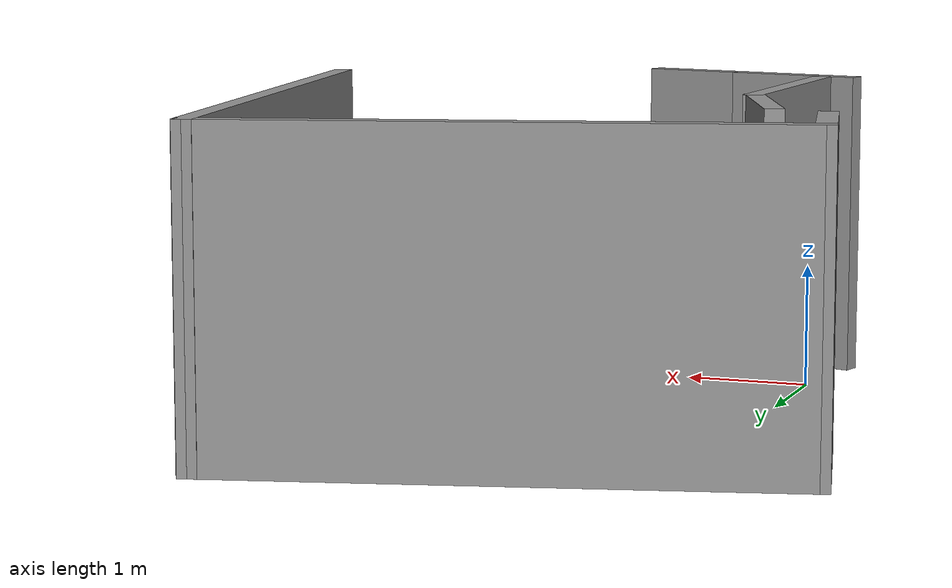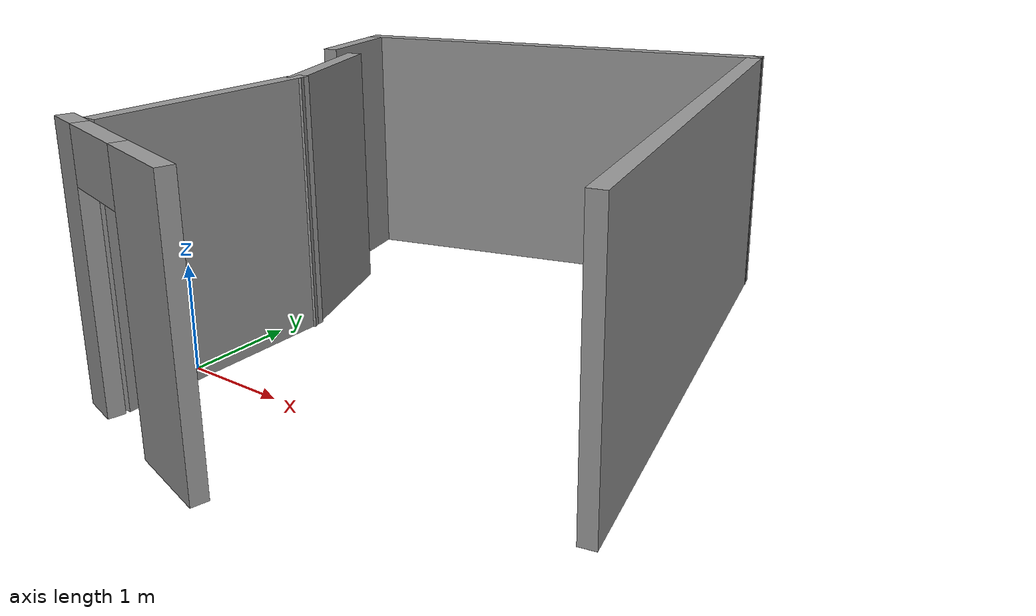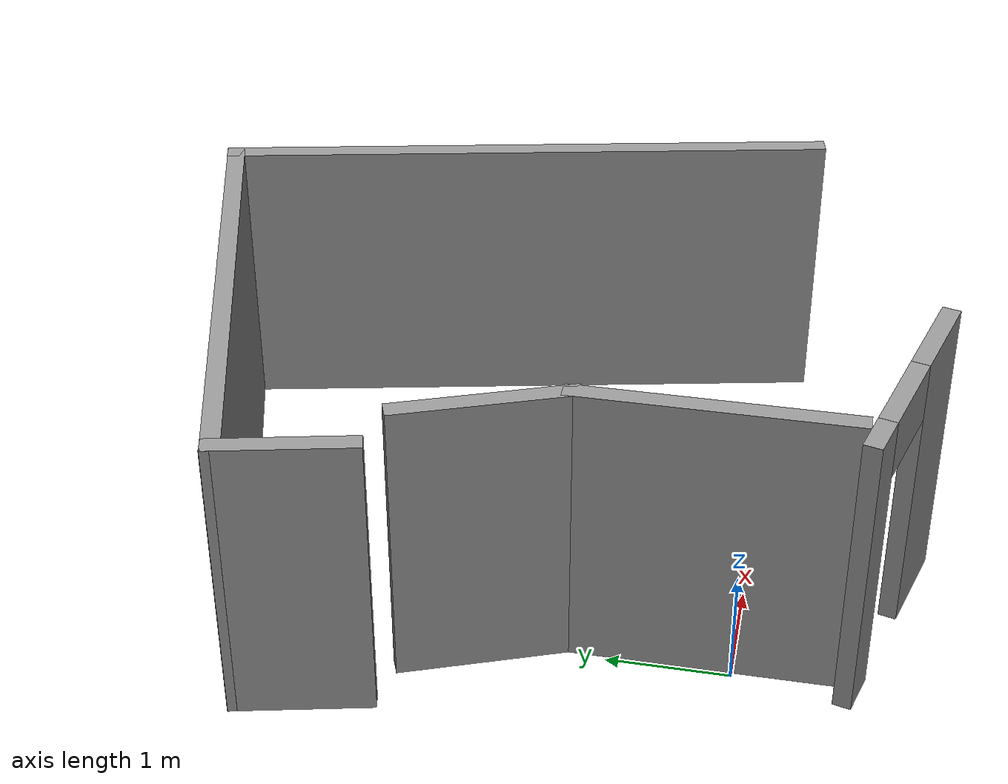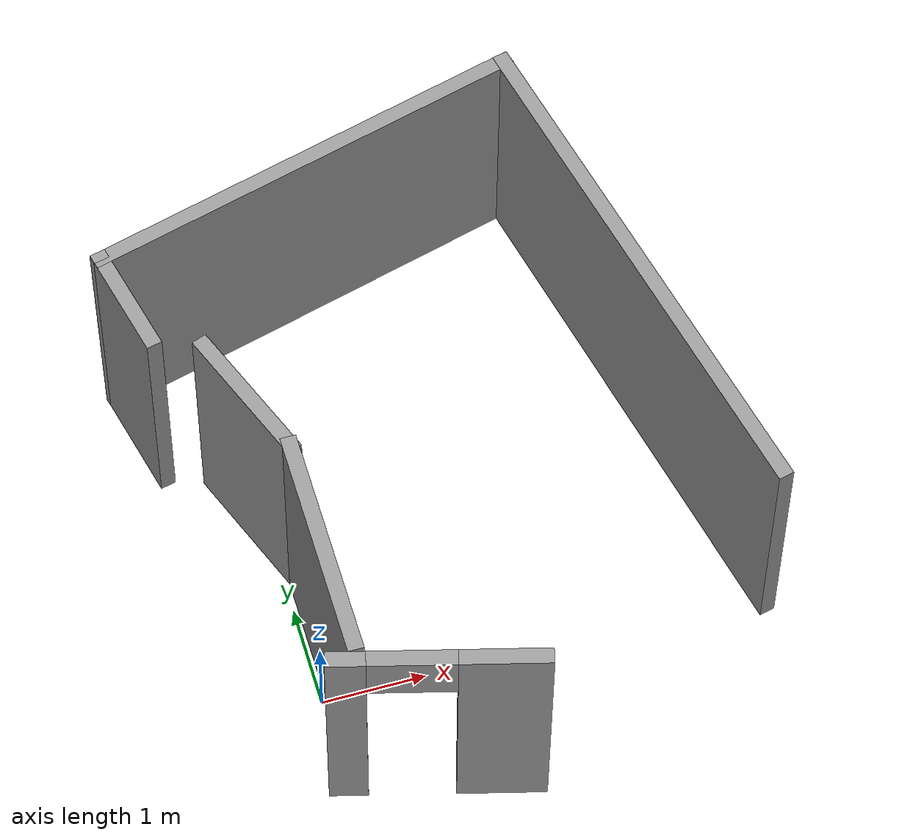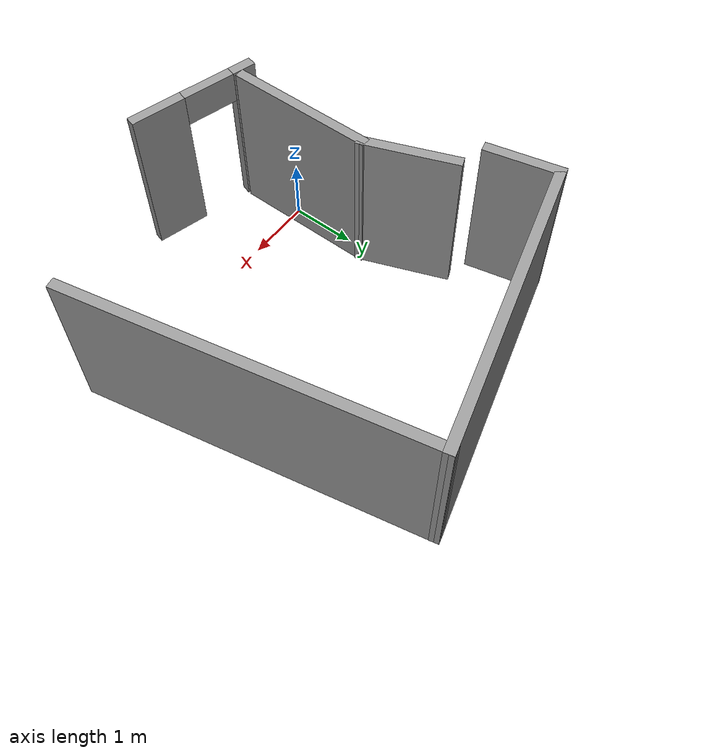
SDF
<?xml version='1.0'?>
<sdf version='1.6'>
  <model name='summer_studio_lab'>
    <pose frame=''>1.61217 1.73553 0 0 -0 0</pose>
    <link name='Wall_10'>
      <collision name='Wall_10_Collision'>
        <geometry>
          <box>
            <size>2.25 0.15 2.5</size>
          </box>
        </geometry>
        <pose frame=''>0 0 1.25 0 -0 0</pose>
      </collision>
      <visual name='Wall_10_Visual'>
        <pose frame=''>0 0 1.25 0 -0 0</pose>
        <geometry>
          <box>
            <size>2.25 0.15 2.5</size>
          </box>
        </geometry>
        <material>
          <script>
            <uri>file://media/materials/scripts/gazebo.material</uri>
            <name>Gazebo/Grey</name>
          </script>
          <ambient>1 1 1 1</ambient>
        </material>
      </visual>
      <pose frame=''>-1.49711 -1.46776 0 0 0 -1.5708</pose>
    </link>
    <link name='Wall_12'>
      <collision name='Wall_12_Collision'>
        <geometry>
          <box>
            <size>1.1528 0.15 2.5</size>
          </box>
        </geometry>
        <pose frame=''>0 0 1.25 0 -0 0</pose>
      </collision>
      <visual name='Wall_12_Visual'>
        <pose frame=''>0 0 1.25 0 -0 0</pose>
        <geometry>
          <box>
            <size>1.1528 0.15 2.5</size>
          </box>
        </geometry>
        <material>
          <script>
            <uri>file://media/materials/scripts/gazebo.material</uri>
            <name>Gazebo/Grey</name>
          </script>
          <ambient>1 1 1 1</ambient>
        </material>
      </visual>
      <pose frame=''>-2.52795 1.49381 0 0 -0 1.79503</pose>
    </link>
    <link name='Wall_14'>
      <pose frame=''>-0.825554 -2.86911 0 0 0 -0.261799</pose>
      <visual name='Wall_14_Visual_0'>
        <pose frame=''>-0.819333 0 1.25 0 -0 0</pose>
        <geometry>
          <box>
            <size>0.361333 0.15 2.5</size>
          </box>
        </geometry>
        <material>
          <script>
            <uri>file://media/materials/scripts/gazebo.material</uri>
            <name>Gazebo/Grey</name>
          </script>
          <ambient>1 1 1 1</ambient>
        </material>
      </visual>
      <collision name='Wall_14_Collision_0'>
        <geometry>
          <box>
            <size>0.361333 0.15 2.5</size>
          </box>
        </geometry>
        <pose frame=''>-0.819333 0 1.25 0 -0 0</pose>
      </collision>
      <visual name='Wall_14_Visual_1'>
        <pose frame=''>0.583168 0 1.25 0 -0 0</pose>
        <geometry>
          <box>
            <size>0.833664 0.15 2.5</size>
          </box>
        </geometry>
        <material>
          <script>
            <uri>file://media/materials/scripts/gazebo.material</uri>
            <name>Gazebo/Grey</name>
          </script>
          <ambient>1 1 1 1</ambient>
        </material>
      </visual>
      <collision name='Wall_14_Collision_1'>
        <geometry>
          <box>
            <size>0.833664 0.15 2.5</size>
          </box>
        </geometry>
        <pose frame=''>0.583168 0 1.25 0 -0 0</pose>
      </collision>
      <visual name='Wall_14_Visual_2'>
        <pose frame=''>-0.236165 0 2.25 0 -0 0</pose>
        <geometry>
          <box>
            <size>0.805003 0.15 0.5</size>
          </box>
        </geometry>
        <material>
          <script>
            <uri>file://media/materials/scripts/gazebo.material</uri>
            <name>Gazebo/Grey</name>
          </script>
          <ambient>1 1 1 1</ambient>
        </material>
      </visual>
      <collision name='Wall_14_Collision_2'>
        <geometry>
          <box>
            <size>0.805003 0.15 0.5</size>
          </box>
        </geometry>
        <pose frame=''>-0.236165 0 2.25 0 -0 0</pose>
      </collision>
    </link>
    <link name='Wall_6'>
      <collision name='Wall_6_Collision'>
        <geometry>
          <box>
            <size>4.5 0.15 2.5</size>
          </box>
        </geometry>
        <pose frame=''>0 0 1.25 0 -0 0</pose>
      </collision>
      <visual name='Wall_6_Visual'>
        <pose frame=''>0 0 1.25 0 -0 0</pose>
        <geometry>
          <box>
            <size>4.5 0.15 2.5</size>
          </box>
        </geometry>
        <material>
          <script>
            <uri>file://media/materials/scripts/gazebo.material</uri>
            <name>Gazebo/Grey</name>
          </script>
          <ambient>1 1 1 1</ambient>
        </material>
      </visual>
      <pose frame=''>-0.53855 2.54559 0 0 -0 0.261799</pose>
    </link>
    <link name='Wall_7'>
      <collision name='Wall_7_Collision'>
        <geometry>
          <box>
            <size>5.27699 0.15 2.5</size>
          </box>
        </geometry>
        <pose frame=''>0 0 1.25 0 -0 0</pose>
      </collision>
      <visual name='Wall_7_Visual'>
        <pose frame=''>0 0 1.25 0 -0 0</pose>
        <geometry>
          <box>
            <size>5.27699 0.15 2.5</size>
          </box>
        </geometry>
        <material>
          <script>
            <uri>file://media/materials/scripts/gazebo.material</uri>
            <name>Gazebo/Grey</name>
          </script>
          <ambient>1 1 1 1</ambient>
        </material>
      </visual>
      <pose frame=''>2.10226 0.602527 0 0 0 -1.35859</pose>
    </link>
    <link name='Wall_9'>
      <collision name='Wall_9_Collision'>
        <geometry>
          <box>
            <size>1.47172 0.15 2.5</size>
          </box>
        </geometry>
        <pose frame=''>0 0 1.25 0 -0 0</pose>
      </collision>
      <visual name='Wall_9_Visual'>
        <pose frame=''>0 0 1.25 0 -0 0</pose>
        <geometry>
          <box>
            <size>1.47172 0.15 2.5</size>
          </box>
        </geometry>
        <material>
          <script>
            <uri>file://media/materials/scripts/gazebo.material</uri>
            <name>Gazebo/Grey</name>
          </script>
          <ambient>1 1 1 1</ambient>
        </material>
      </visual>
      <pose frame=''>-1.7338 0.199257 0 0 0 -1.20451</pose>
    </link>
    <static>1</static>
  </model>
</sdf>
